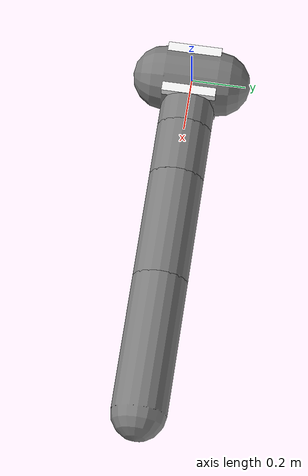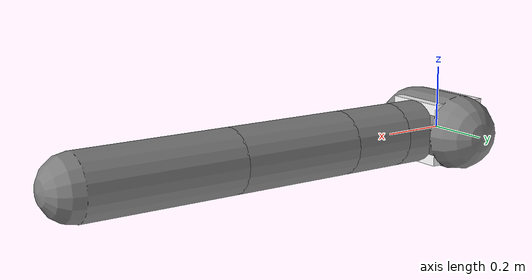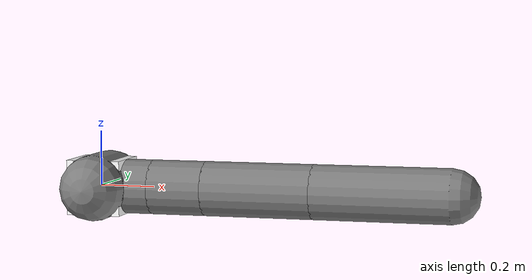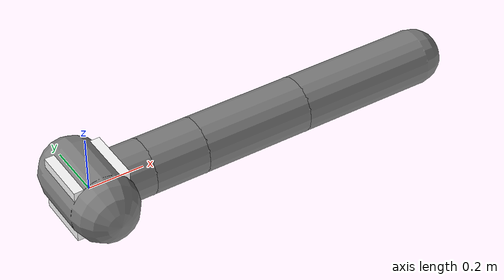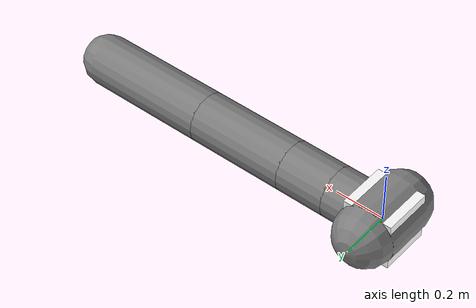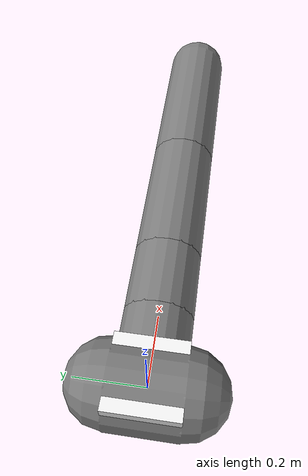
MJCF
<mujoco model="arm3d">
    <compiler inertiafromgeom="true" angle="radian" coordinate="local" />
    <option timestep="0.01" gravity="0 0 0" iterations="20" integrator="Euler" />

    <default>
        <joint armature='0.04' damping="1" limited="true"/>
        <geom friction=".8 .1 .1" density="500" margin="0.002" condim="1" contype="1" conaffinity="1"/>
    </default>

    <worldbody>
        <body name="palm" pos="0 0 0">
            <geom type="capsule" fromto="0 -0.1 0 0 0.1 0" size="0.12"/>
            <joint name="arm_updown" type="slide" pos="0.0 0.0 0.0" axis="0 1 0" range="-50.3213 50.3" damping="0.5"/>
            <body name="proximal_1" pos="0 0 0">
                <joint name="proximal_j_1" type="hinge" pos="0 0 0" axis="0 1 0" range="-2.5236 2.3963" damping="0.5" />
                <geom type="capsule"  fromto="0 0 0 0.2 0 0" size="0.1" contype="1" conaffinity="1"/>
                <body name="distal_1" pos="0.2 0 0">
                    <joint name="distal_j_1" type="hinge" pos="0 0 0" axis="0 1 0" range="-2.3213 2.3" damping="0.5"/>
                    <geom type="capsule"  fromto="0 0 0 0.2 0 0" size="0.1" contype="1" conaffinity="1"/>
                    <body name="distal_2" pos="0.2 0 0">
                        <site name="elbow arm" pos="0 0 0" size="0.01" />
                        <joint name="distal_j_2" type="hinge" pos="0 0 0" axis="0 1 0" range="-2.3213 2.3" damping="0.5"/>
                        <geom type="capsule" fromto="0 0 0 0.4 0 0" size="0.1" contype="1" conaffinity="1"/>
                        <body name="distal_3" pos="0.4 0 0">
                            <joint name="distal_j_3" type="hinge" pos="0 0 0" axis="0 1 0" range="-2.3213 2.3" damping="0.5"/>
                            <geom type="capsule" fromto="0 0 0 0.5 0 0" size="0.1" contype="1" conaffinity="1"/>
                            <body name="distal_4" pos="0.4 0 0">
                                <site name="tip arm" pos="0 0 0" size="0.01" />
                            </body>
                        </body>
                    </body>
                </body>
            </body>
        </body>
        <body name="object1" pos="0.0 0.0 0.0">
            <geom rgba="1. 1. 1. 1" type="box" size="0.1 0.1 0.1" density='0.00001' contype="1" conaffinity="1"/>
            <joint name="obj1_slidey" type="slide" pos="0.05 0.05 0.05" axis="0 1 0" range="-50.3213 50.3" damping="0.5"/>
            <site name="obj1_pos" pos="0.05 0.05 0.05" size="0.01" />
        </body>
        <body name="object2" pos="0.0 0.0 0.0">
            <geom rgba="1. 0.5 0.5 0" type="box" size="0.1 0.1 0.1" density='0.00001' contype="1" conaffinity="1"/>
            <joint name="obj2_slidey" type="slide" pos="0.05 0.05 0.05" axis="0 1 0" range="-50.3213 50.3" damping="0.5"/>
            <site name="obj2_pos" pos="0.05 0.05 0.05" size="0.01" />
        </body>
        <body name="goal1" pos="0.0 0.0 0.0">
            <geom rgba="1. 0. 0. 1" type="box" size="0.1 0.1 0.1" density='0.00001' contype="0" conaffinity="0"/>
            <site name="goal1" pos="0.05 0.05 0.05" size="0.01" />
        </body>
        <body name="goal2" pos="0.0 0.0 0.0">
            <geom rgba="1. 0. 0. 1" type="box" size="0.1 0.1 0.1" density='0.00001' contype="0" conaffinity="0"/>
            <site name="goal2" pos="0.05 0.05 0.05" size="0.01" />
        </body>
    </worldbody>

    <actuator>
        <motor joint="arm_updown" ctrlrange="-2 2" ctrllimited="true"/>
        <motor joint="proximal_j_1" ctrlrange="-2 2" ctrllimited="true"/>
        <motor joint="distal_j_1" ctrlrange="-2 2" ctrllimited="true"/>
        <motor joint="distal_j_2" ctrlrange="-2 2" ctrllimited="true"/>
        <motor joint="distal_j_3" ctrlrange="-2 2" ctrllimited="true"/>
    </actuator>
</mujoco>
